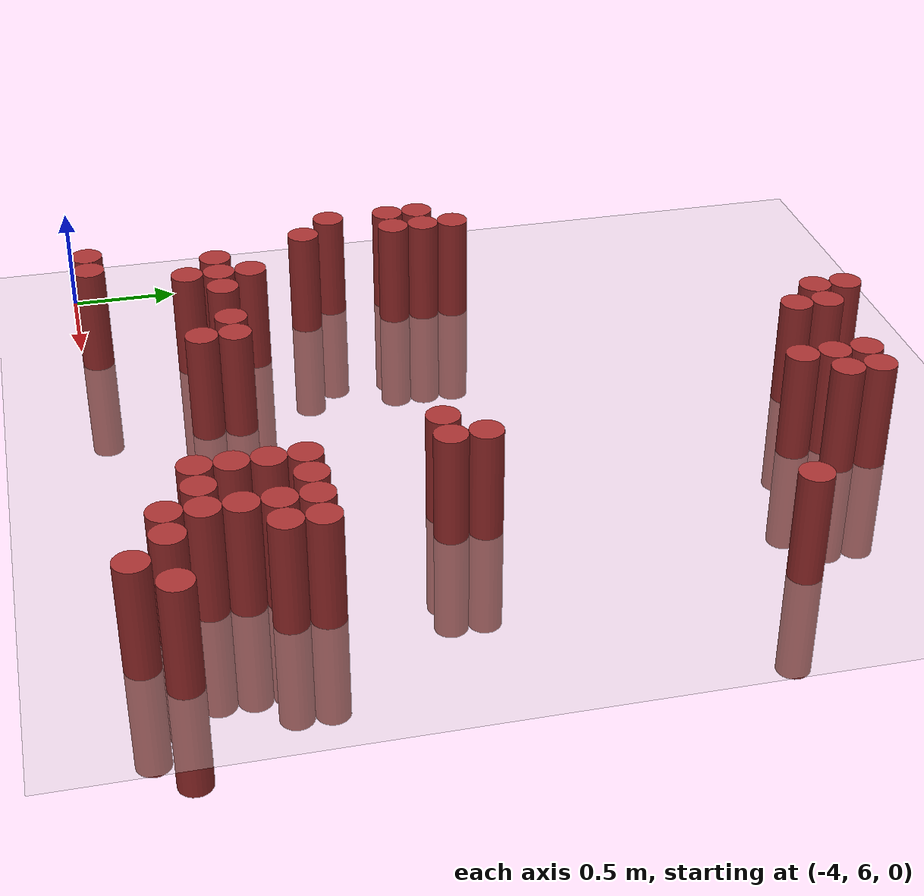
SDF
<sdf version="1.6">
 <world name="default">
  <model name="ground_plane">
   <static>1</static>
   <link name="link">
    <collision name="collision">
     <geometry><plane><normal>0 0 1</normal><size>100 100</size></plane></geometry>
     <surface><friction><ode><mu>100</mu><mu2>50</mu2></ode></friction></surface>
    </collision>
    <visual name="visual">
     <cast_shadows>0</cast_shadows>
     <geometry><plane><normal>0 0 1</normal><size>100 100</size></plane></geometry>
     <material>
      <script><uri>file://media/materials/scripts/gazebo.material</uri><name>Gazebo/Grey</name></script>
     </material>
    </visual>
   </link>
  </model>
  <model name="unit_cylinder_162">
   <static>1</static>
   <pose>-3.675000 7.275000 0.000000 0.000000 0.000000 0.000000</pose>
   <link name="link">
    <inertial>
     <mass>1</mass>
     <inertia><ixx>0.145833</ixx><ixy>0</ixy><ixz>0</ixz><iyy>0.145833</iyy><iyz>0</iyz><izz>0.125</izz></inertia>
    </inertial>
    <collision name="collision">
     <geometry><cylinder><radius>0.075000</radius><length>1</length></cylinder></geometry>
    </collision>
    <visual name="visual">
     <geometry><cylinder><radius>0.075000</radius><length>1</length></cylinder></geometry>
     <material>
      <ambient>0.648000 0.192000 0.192000 1</ambient>
      <diffuse>0.648000 0.192000 0.192000 1</diffuse>
     </material>
     <material>
      <script><name>Gazebo/Grey</name><uri>file://media/materials/scripts/gazebo.material</uri></script>
     </material>
    </visual>
   </link>
  </model>
  <model name="unit_cylinder_163">
   <static>1</static>
   <pose>-3.675000 7.575000 0.000000 0.000000 0.000000 0.000000</pose>
   <link name="link">
    <inertial>
     <mass>1</mass>
     <inertia><ixx>0.145833</ixx><ixy>0</ixy><ixz>0</ixz><iyy>0.145833</iyy><iyz>0</iyz><izz>0.125</izz></inertia>
    </inertial>
    <collision name="collision">
     <geometry><cylinder><radius>0.075000</radius><length>1</length></cylinder></geometry>
    </collision>
    <visual name="visual">
     <geometry><cylinder><radius>0.075000</radius><length>1</length></cylinder></geometry>
     <material>
      <ambient>0.648000 0.192000 0.192000 1</ambient>
      <diffuse>0.648000 0.192000 0.192000 1</diffuse>
     </material>
     <material>
      <script><name>Gazebo/Grey</name><uri>file://media/materials/scripts/gazebo.material</uri></script>
     </material>
    </visual>
   </link>
  </model>
  <model name="unit_cylinder_164">
   <static>1</static>
   <pose>-3.675000 7.725000 0.000000 0.000000 0.000000 0.000000</pose>
   <link name="link">
    <inertial>
     <mass>1</mass>
     <inertia><ixx>0.145833</ixx><ixy>0</ixy><ixz>0</ixz><iyy>0.145833</iyy><iyz>0</iyz><izz>0.125</izz></inertia>
    </inertial>
    <collision name="collision">
     <geometry><cylinder><radius>0.075000</radius><length>1</length></cylinder></geometry>
    </collision>
    <visual name="visual">
     <geometry><cylinder><radius>0.075000</radius><length>1</length></cylinder></geometry>
     <material>
      <ambient>0.648000 0.192000 0.192000 1</ambient>
      <diffuse>0.648000 0.192000 0.192000 1</diffuse>
     </material>
     <material>
      <script><name>Gazebo/Grey</name><uri>file://media/materials/scripts/gazebo.material</uri></script>
     </material>
    </visual>
   </link>
  </model>
  <model name="unit_cylinder_167">
   <static>1</static>
   <pose>-3.525000 6.075000 0.000000 0.000000 0.000000 0.000000</pose>
   <link name="link">
    <inertial>
     <mass>1</mass>
     <inertia><ixx>0.145833</ixx><ixy>0</ixy><ixz>0</ixz><iyy>0.145833</iyy><iyz>0</iyz><izz>0.125</izz></inertia>
    </inertial>
    <collision name="collision">
     <geometry><cylinder><radius>0.075000</radius><length>1</length></cylinder></geometry>
    </collision>
    <visual name="visual">
     <geometry><cylinder><radius>0.075000</radius><length>1</length></cylinder></geometry>
     <material>
      <ambient>0.648000 0.192000 0.192000 1</ambient>
      <diffuse>0.648000 0.192000 0.192000 1</diffuse>
     </material>
     <material>
      <script><name>Gazebo/Grey</name><uri>file://media/materials/scripts/gazebo.material</uri></script>
     </material>
    </visual>
   </link>
  </model>
  <model name="unit_cylinder_168">
   <static>1</static>
   <pose>-3.525000 7.125000 0.000000 0.000000 0.000000 0.000000</pose>
   <link name="link">
    <inertial>
     <mass>1</mass>
     <inertia><ixx>0.145833</ixx><ixy>0</ixy><ixz>0</ixz><iyy>0.145833</iyy><iyz>0</iyz><izz>0.125</izz></inertia>
    </inertial>
    <collision name="collision">
     <geometry><cylinder><radius>0.075000</radius><length>1</length></cylinder></geometry>
    </collision>
    <visual name="visual">
     <geometry><cylinder><radius>0.075000</radius><length>1</length></cylinder></geometry>
     <material>
      <ambient>0.648000 0.192000 0.192000 1</ambient>
      <diffuse>0.648000 0.192000 0.192000 1</diffuse>
     </material>
     <material>
      <script><name>Gazebo/Grey</name><uri>file://media/materials/scripts/gazebo.material</uri></script>
     </material>
    </visual>
   </link>
  </model>
  <model name="unit_cylinder_169">
   <static>1</static>
   <pose>-3.525000 7.575000 0.000000 0.000000 0.000000 0.000000</pose>
   <link name="link">
    <inertial>
     <mass>1</mass>
     <inertia><ixx>0.145833</ixx><ixy>0</ixy><ixz>0</ixz><iyy>0.145833</iyy><iyz>0</iyz><izz>0.125</izz></inertia>
    </inertial>
    <collision name="collision">
     <geometry><cylinder><radius>0.075000</radius><length>1</length></cylinder></geometry>
    </collision>
    <visual name="visual">
     <geometry><cylinder><radius>0.075000</radius><length>1</length></cylinder></geometry>
     <material>
      <ambient>0.648000 0.192000 0.192000 1</ambient>
      <diffuse>0.648000 0.192000 0.192000 1</diffuse>
     </material>
     <material>
      <script><name>Gazebo/Grey</name><uri>file://media/materials/scripts/gazebo.material</uri></script>
     </material>
    </visual>
   </link>
  </model>
  <model name="unit_cylinder_170">
   <static>1</static>
   <pose>-3.525000 7.725000 0.000000 0.000000 0.000000 0.000000</pose>
   <link name="link">
    <inertial>
     <mass>1</mass>
     <inertia><ixx>0.145833</ixx><ixy>0</ixy><ixz>0</ixz><iyy>0.145833</iyy><iyz>0</iyz><izz>0.125</izz></inertia>
    </inertial>
    <collision name="collision">
     <geometry><cylinder><radius>0.075000</radius><length>1</length></cylinder></geometry>
    </collision>
    <visual name="visual">
     <geometry><cylinder><radius>0.075000</radius><length>1</length></cylinder></geometry>
     <material>
      <ambient>0.648000 0.192000 0.192000 1</ambient>
      <diffuse>0.648000 0.192000 0.192000 1</diffuse>
     </material>
     <material>
      <script><name>Gazebo/Grey</name><uri>file://media/materials/scripts/gazebo.material</uri></script>
     </material>
    </visual>
   </link>
  </model>
  <model name="unit_cylinder_171">
   <static>1</static>
   <pose>-3.525000 7.875000 0.000000 0.000000 0.000000 0.000000</pose>
   <link name="link">
    <inertial>
     <mass>1</mass>
     <inertia><ixx>0.145833</ixx><ixy>0</ixy><ixz>0</ixz><iyy>0.145833</iyy><iyz>0</iyz><izz>0.125</izz></inertia>
    </inertial>
    <collision name="collision">
     <geometry><cylinder><radius>0.075000</radius><length>1</length></cylinder></geometry>
    </collision>
    <visual name="visual">
     <geometry><cylinder><radius>0.075000</radius><length>1</length></cylinder></geometry>
     <material>
      <ambient>0.648000 0.192000 0.192000 1</ambient>
      <diffuse>0.648000 0.192000 0.192000 1</diffuse>
     </material>
     <material>
      <script><name>Gazebo/Grey</name><uri>file://media/materials/scripts/gazebo.material</uri></script>
     </material>
    </visual>
   </link>
  </model>
  <model name="unit_cylinder_174">
   <static>1</static>
   <pose>-3.375000 6.075000 0.000000 0.000000 0.000000 0.000000</pose>
   <link name="link">
    <inertial>
     <mass>1</mass>
     <inertia><ixx>0.145833</ixx><ixy>0</ixy><ixz>0</ixz><iyy>0.145833</iyy><iyz>0</iyz><izz>0.125</izz></inertia>
    </inertial>
    <collision name="collision">
     <geometry><cylinder><radius>0.075000</radius><length>1</length></cylinder></geometry>
    </collision>
    <visual name="visual">
     <geometry><cylinder><radius>0.075000</radius><length>1</length></cylinder></geometry>
     <material>
      <ambient>0.648000 0.192000 0.192000 1</ambient>
      <diffuse>0.648000 0.192000 0.192000 1</diffuse>
     </material>
     <material>
      <script><name>Gazebo/Grey</name><uri>file://media/materials/scripts/gazebo.material</uri></script>
     </material>
    </visual>
   </link>
  </model>
  <model name="unit_cylinder_175">
   <static>1</static>
   <pose>-3.375000 6.675000 0.000000 0.000000 0.000000 0.000000</pose>
   <link name="link">
    <inertial>
     <mass>1</mass>
     <inertia><ixx>0.145833</ixx><ixy>0</ixy><ixz>0</ixz><iyy>0.145833</iyy><iyz>0</iyz><izz>0.125</izz></inertia>
    </inertial>
    <collision name="collision">
     <geometry><cylinder><radius>0.075000</radius><length>1</length></cylinder></geometry>
    </collision>
    <visual name="visual">
     <geometry><cylinder><radius>0.075000</radius><length>1</length></cylinder></geometry>
     <material>
      <ambient>0.648000 0.192000 0.192000 1</ambient>
      <diffuse>0.648000 0.192000 0.192000 1</diffuse>
     </material>
     <material>
      <script><name>Gazebo/Grey</name><uri>file://media/materials/scripts/gazebo.material</uri></script>
     </material>
    </visual>
   </link>
  </model>
  <model name="unit_cylinder_178">
   <static>1</static>
   <pose>-3.225000 6.525000 0.000000 0.000000 0.000000 0.000000</pose>
   <link name="link">
    <inertial>
     <mass>1</mass>
     <inertia><ixx>0.145833</ixx><ixy>0</ixy><ixz>0</ixz><iyy>0.145833</iyy><iyz>0</iyz><izz>0.125</izz></inertia>
    </inertial>
    <collision name="collision">
     <geometry><cylinder><radius>0.075000</radius><length>1</length></cylinder></geometry>
    </collision>
    <visual name="visual">
     <geometry><cylinder><radius>0.075000</radius><length>1</length></cylinder></geometry>
     <material>
      <ambient>0.648000 0.192000 0.192000 1</ambient>
      <diffuse>0.648000 0.192000 0.192000 1</diffuse>
     </material>
     <material>
      <script><name>Gazebo/Grey</name><uri>file://media/materials/scripts/gazebo.material</uri></script>
     </material>
    </visual>
   </link>
  </model>
  <model name="unit_cylinder_179">
   <static>1</static>
   <pose>-3.225000 6.675000 0.000000 0.000000 0.000000 0.000000</pose>
   <link name="link">
    <inertial>
     <mass>1</mass>
     <inertia><ixx>0.145833</ixx><ixy>0</ixy><ixz>0</ixz><iyy>0.145833</iyy><iyz>0</iyz><izz>0.125</izz></inertia>
    </inertial>
    <collision name="collision">
     <geometry><cylinder><radius>0.075000</radius><length>1</length></cylinder></geometry>
    </collision>
    <visual name="visual">
     <geometry><cylinder><radius>0.075000</radius><length>1</length></cylinder></geometry>
     <material>
      <ambient>0.648000 0.192000 0.192000 1</ambient>
      <diffuse>0.648000 0.192000 0.192000 1</diffuse>
     </material>
     <material>
      <script><name>Gazebo/Grey</name><uri>file://media/materials/scripts/gazebo.material</uri></script>
     </material>
    </visual>
   </link>
  </model>
  <model name="unit_cylinder_180">
   <static>1</static>
   <pose>-3.225000 6.825000 0.000000 0.000000 0.000000 0.000000</pose>
   <link name="link">
    <inertial>
     <mass>1</mass>
     <inertia><ixx>0.145833</ixx><ixy>0</ixy><ixz>0</ixz><iyy>0.145833</iyy><iyz>0</iyz><izz>0.125</izz></inertia>
    </inertial>
    <collision name="collision">
     <geometry><cylinder><radius>0.075000</radius><length>1</length></cylinder></geometry>
    </collision>
    <visual name="visual">
     <geometry><cylinder><radius>0.075000</radius><length>1</length></cylinder></geometry>
     <material>
      <ambient>0.648000 0.192000 0.192000 1</ambient>
      <diffuse>0.648000 0.192000 0.192000 1</diffuse>
     </material>
     <material>
      <script><name>Gazebo/Grey</name><uri>file://media/materials/scripts/gazebo.material</uri></script>
     </material>
    </visual>
   </link>
  </model>
  <model name="unit_cylinder_181">
   <static>1</static>
   <pose>-3.075000 6.675000 0.000000 0.000000 0.000000 0.000000</pose>
   <link name="link">
    <inertial>
     <mass>1</mass>
     <inertia><ixx>0.145833</ixx><ixy>0</ixy><ixz>0</ixz><iyy>0.145833</iyy><iyz>0</iyz><izz>0.125</izz></inertia>
    </inertial>
    <collision name="collision">
     <geometry><cylinder><radius>0.075000</radius><length>1</length></cylinder></geometry>
    </collision>
    <visual name="visual">
     <geometry><cylinder><radius>0.075000</radius><length>1</length></cylinder></geometry>
     <material>
      <ambient>0.648000 0.192000 0.192000 1</ambient>
      <diffuse>0.648000 0.192000 0.192000 1</diffuse>
     </material>
     <material>
      <script><name>Gazebo/Grey</name><uri>file://media/materials/scripts/gazebo.material</uri></script>
     </material>
    </visual>
   </link>
  </model>
  <model name="unit_cylinder_182">
   <static>1</static>
   <pose>-2.775000 6.675000 0.000000 0.000000 0.000000 0.000000</pose>
   <link name="link">
    <inertial>
     <mass>1</mass>
     <inertia><ixx>0.145833</ixx><ixy>0</ixy><ixz>0</ixz><iyy>0.145833</iyy><iyz>0</iyz><izz>0.125</izz></inertia>
    </inertial>
    <collision name="collision">
     <geometry><cylinder><radius>0.075000</radius><length>1</length></cylinder></geometry>
    </collision>
    <visual name="visual">
     <geometry><cylinder><radius>0.075000</radius><length>1</length></cylinder></geometry>
     <material>
      <ambient>0.648000 0.192000 0.192000 1</ambient>
      <diffuse>0.648000 0.192000 0.192000 1</diffuse>
     </material>
     <material>
      <script><name>Gazebo/Grey</name><uri>file://media/materials/scripts/gazebo.material</uri></script>
     </material>
    </visual>
   </link>
  </model>
  <model name="unit_cylinder_183">
   <static>1</static>
   <pose>-2.625000 6.525000 0.000000 0.000000 0.000000 0.000000</pose>
   <link name="link">
    <inertial>
     <mass>1</mass>
     <inertia><ixx>0.145833</ixx><ixy>0</ixy><ixz>0</ixz><iyy>0.145833</iyy><iyz>0</iyz><izz>0.125</izz></inertia>
    </inertial>
    <collision name="collision">
     <geometry><cylinder><radius>0.075000</radius><length>1</length></cylinder></geometry>
    </collision>
    <visual name="visual">
     <geometry><cylinder><radius>0.075000</radius><length>1</length></cylinder></geometry>
     <material>
      <ambient>0.648000 0.192000 0.192000 1</ambient>
      <diffuse>0.648000 0.192000 0.192000 1</diffuse>
     </material>
     <material>
      <script><name>Gazebo/Grey</name><uri>file://media/materials/scripts/gazebo.material</uri></script>
     </material>
    </visual>
   </link>
  </model>
  <model name="unit_cylinder_184">
   <static>1</static>
   <pose>-2.625000 6.675000 0.000000 0.000000 0.000000 0.000000</pose>
   <link name="link">
    <inertial>
     <mass>1</mass>
     <inertia><ixx>0.145833</ixx><ixy>0</ixy><ixz>0</ixz><iyy>0.145833</iyy><iyz>0</iyz><izz>0.125</izz></inertia>
    </inertial>
    <collision name="collision">
     <geometry><cylinder><radius>0.075000</radius><length>1</length></cylinder></geometry>
    </collision>
    <visual name="visual">
     <geometry><cylinder><radius>0.075000</radius><length>1</length></cylinder></geometry>
     <material>
      <ambient>0.648000 0.192000 0.192000 1</ambient>
      <diffuse>0.648000 0.192000 0.192000 1</diffuse>
     </material>
     <material>
      <script><name>Gazebo/Grey</name><uri>file://media/materials/scripts/gazebo.material</uri></script>
     </material>
    </visual>
   </link>
  </model>
  <model name="unit_cylinder_185">
   <static>1</static>
   <pose>-2.475000 9.375000 0.000000 0.000000 0.000000 0.000000</pose>
   <link name="link">
    <inertial>
     <mass>1</mass>
     <inertia><ixx>0.145833</ixx><ixy>0</ixy><ixz>0</ixz><iyy>0.145833</iyy><iyz>0</iyz><izz>0.125</izz></inertia>
    </inertial>
    <collision name="collision">
     <geometry><cylinder><radius>0.075000</radius><length>1</length></cylinder></geometry>
    </collision>
    <visual name="visual">
     <geometry><cylinder><radius>0.075000</radius><length>1</length></cylinder></geometry>
     <material>
      <ambient>0.648000 0.192000 0.192000 1</ambient>
      <diffuse>0.648000 0.192000 0.192000 1</diffuse>
     </material>
     <material>
      <script><name>Gazebo/Grey</name><uri>file://media/materials/scripts/gazebo.material</uri></script>
     </material>
    </visual>
   </link>
  </model>
  <model name="unit_cylinder_186">
   <static>1</static>
   <pose>-2.475000 9.525000 0.000000 0.000000 0.000000 0.000000</pose>
   <link name="link">
    <inertial>
     <mass>1</mass>
     <inertia><ixx>0.145833</ixx><ixy>0</ixy><ixz>0</ixz><iyy>0.145833</iyy><iyz>0</iyz><izz>0.125</izz></inertia>
    </inertial>
    <collision name="collision">
     <geometry><cylinder><radius>0.075000</radius><length>1</length></cylinder></geometry>
    </collision>
    <visual name="visual">
     <geometry><cylinder><radius>0.075000</radius><length>1</length></cylinder></geometry>
     <material>
      <ambient>0.648000 0.192000 0.192000 1</ambient>
      <diffuse>0.648000 0.192000 0.192000 1</diffuse>
     </material>
     <material>
      <script><name>Gazebo/Grey</name><uri>file://media/materials/scripts/gazebo.material</uri></script>
     </material>
    </visual>
   </link>
  </model>
  <model name="unit_cylinder_187">
   <static>1</static>
   <pose>-2.325000 9.225000 0.000000 0.000000 0.000000 0.000000</pose>
   <link name="link">
    <inertial>
     <mass>1</mass>
     <inertia><ixx>0.145833</ixx><ixy>0</ixy><ixz>0</ixz><iyy>0.145833</iyy><iyz>0</iyz><izz>0.125</izz></inertia>
    </inertial>
    <collision name="collision">
     <geometry><cylinder><radius>0.075000</radius><length>1</length></cylinder></geometry>
    </collision>
    <visual name="visual">
     <geometry><cylinder><radius>0.075000</radius><length>1</length></cylinder></geometry>
     <material>
      <ambient>0.648000 0.192000 0.192000 1</ambient>
      <diffuse>0.648000 0.192000 0.192000 1</diffuse>
     </material>
     <material>
      <script><name>Gazebo/Grey</name><uri>file://media/materials/scripts/gazebo.material</uri></script>
     </material>
    </visual>
   </link>
  </model>
  <model name="unit_cylinder_188">
   <static>1</static>
   <pose>-2.325000 9.375000 0.000000 0.000000 0.000000 0.000000</pose>
   <link name="link">
    <inertial>
     <mass>1</mass>
     <inertia><ixx>0.145833</ixx><ixy>0</ixy><ixz>0</ixz><iyy>0.145833</iyy><iyz>0</iyz><izz>0.125</izz></inertia>
    </inertial>
    <collision name="collision">
     <geometry><cylinder><radius>0.075000</radius><length>1</length></cylinder></geometry>
    </collision>
    <visual name="visual">
     <geometry><cylinder><radius>0.075000</radius><length>1</length></cylinder></geometry>
     <material>
      <ambient>0.648000 0.192000 0.192000 1</ambient>
      <diffuse>0.648000 0.192000 0.192000 1</diffuse>
     </material>
     <material>
      <script><name>Gazebo/Grey</name><uri>file://media/materials/scripts/gazebo.material</uri></script>
     </material>
    </visual>
   </link>
  </model>
  <model name="unit_cylinder_190">
   <static>1</static>
   <pose>-1.875000 9.075000 0.000000 0.000000 0.000000 0.000000</pose>
   <link name="link">
    <inertial>
     <mass>1</mass>
     <inertia><ixx>0.145833</ixx><ixy>0</ixy><ixz>0</ixz><iyy>0.145833</iyy><iyz>0</iyz><izz>0.125</izz></inertia>
    </inertial>
    <collision name="collision">
     <geometry><cylinder><radius>0.075000</radius><length>1</length></cylinder></geometry>
    </collision>
    <visual name="visual">
     <geometry><cylinder><radius>0.075000</radius><length>1</length></cylinder></geometry>
     <material>
      <ambient>0.648000 0.192000 0.192000 1</ambient>
      <diffuse>0.648000 0.192000 0.192000 1</diffuse>
     </material>
     <material>
      <script><name>Gazebo/Grey</name><uri>file://media/materials/scripts/gazebo.material</uri></script>
     </material>
    </visual>
   </link>
  </model>
  <model name="unit_cylinder_191">
   <static>1</static>
   <pose>-1.875000 9.225000 0.000000 0.000000 0.000000 0.000000</pose>
   <link name="link">
    <inertial>
     <mass>1</mass>
     <inertia><ixx>0.145833</ixx><ixy>0</ixy><ixz>0</ixz><iyy>0.145833</iyy><iyz>0</iyz><izz>0.125</izz></inertia>
    </inertial>
    <collision name="collision">
     <geometry><cylinder><radius>0.075000</radius><length>1</length></cylinder></geometry>
    </collision>
    <visual name="visual">
     <geometry><cylinder><radius>0.075000</radius><length>1</length></cylinder></geometry>
     <material>
      <ambient>0.648000 0.192000 0.192000 1</ambient>
      <diffuse>0.648000 0.192000 0.192000 1</diffuse>
     </material>
     <material>
      <script><name>Gazebo/Grey</name><uri>file://media/materials/scripts/gazebo.material</uri></script>
     </material>
    </visual>
   </link>
  </model>
  <model name="unit_cylinder_192">
   <static>1</static>
   <pose>-1.875000 9.375000 0.000000 0.000000 0.000000 0.000000</pose>
   <link name="link">
    <inertial>
     <mass>1</mass>
     <inertia><ixx>0.145833</ixx><ixy>0</ixy><ixz>0</ixz><iyy>0.145833</iyy><iyz>0</iyz><izz>0.125</izz></inertia>
    </inertial>
    <collision name="collision">
     <geometry><cylinder><radius>0.075000</radius><length>1</length></cylinder></geometry>
    </collision>
    <visual name="visual">
     <geometry><cylinder><radius>0.075000</radius><length>1</length></cylinder></geometry>
     <material>
      <ambient>0.648000 0.192000 0.192000 1</ambient>
      <diffuse>0.648000 0.192000 0.192000 1</diffuse>
     </material>
     <material>
      <script><name>Gazebo/Grey</name><uri>file://media/materials/scripts/gazebo.material</uri></script>
     </material>
    </visual>
   </link>
  </model>
  <model name="unit_cylinder_196">
   <static>1</static>
   <pose>-1.725000 7.425000 0.000000 0.000000 0.000000 0.000000</pose>
   <link name="link">
    <inertial>
     <mass>1</mass>
     <inertia><ixx>0.145833</ixx><ixy>0</ixy><ixz>0</ixz><iyy>0.145833</iyy><iyz>0</iyz><izz>0.125</izz></inertia>
    </inertial>
    <collision name="collision">
     <geometry><cylinder><radius>0.075000</radius><length>1</length></cylinder></geometry>
    </collision>
    <visual name="visual">
     <geometry><cylinder><radius>0.075000</radius><length>1</length></cylinder></geometry>
     <material>
      <ambient>0.648000 0.192000 0.192000 1</ambient>
      <diffuse>0.648000 0.192000 0.192000 1</diffuse>
     </material>
     <material>
      <script><name>Gazebo/Grey</name><uri>file://media/materials/scripts/gazebo.material</uri></script>
     </material>
    </visual>
   </link>
  </model>
  <model name="unit_cylinder_197">
   <static>1</static>
   <pose>-1.725000 9.225000 0.000000 0.000000 0.000000 0.000000</pose>
   <link name="link">
    <inertial>
     <mass>1</mass>
     <inertia><ixx>0.145833</ixx><ixy>0</ixy><ixz>0</ixz><iyy>0.145833</iyy><iyz>0</iyz><izz>0.125</izz></inertia>
    </inertial>
    <collision name="collision">
     <geometry><cylinder><radius>0.075000</radius><length>1</length></cylinder></geometry>
    </collision>
    <visual name="visual">
     <geometry><cylinder><radius>0.075000</radius><length>1</length></cylinder></geometry>
     <material>
      <ambient>0.648000 0.192000 0.192000 1</ambient>
      <diffuse>0.648000 0.192000 0.192000 1</diffuse>
     </material>
     <material>
      <script><name>Gazebo/Grey</name><uri>file://media/materials/scripts/gazebo.material</uri></script>
     </material>
    </visual>
   </link>
  </model>
  <model name="unit_cylinder_198">
   <static>1</static>
   <pose>-1.725000 9.375000 0.000000 0.000000 0.000000 0.000000</pose>
   <link name="link">
    <inertial>
     <mass>1</mass>
     <inertia><ixx>0.145833</ixx><ixy>0</ixy><ixz>0</ixz><iyy>0.145833</iyy><iyz>0</iyz><izz>0.125</izz></inertia>
    </inertial>
    <collision name="collision">
     <geometry><cylinder><radius>0.075000</radius><length>1</length></cylinder></geometry>
    </collision>
    <visual name="visual">
     <geometry><cylinder><radius>0.075000</radius><length>1</length></cylinder></geometry>
     <material>
      <ambient>0.648000 0.192000 0.192000 1</ambient>
      <diffuse>0.648000 0.192000 0.192000 1</diffuse>
     </material>
     <material>
      <script><name>Gazebo/Grey</name><uri>file://media/materials/scripts/gazebo.material</uri></script>
     </material>
    </visual>
   </link>
  </model>
  <model name="unit_cylinder_202">
   <static>1</static>
   <pose>-1.575000 6.375000 0.000000 0.000000 0.000000 0.000000</pose>
   <link name="link">
    <inertial>
     <mass>1</mass>
     <inertia><ixx>0.145833</ixx><ixy>0</ixy><ixz>0</ixz><iyy>0.145833</iyy><iyz>0</iyz><izz>0.125</izz></inertia>
    </inertial>
    <collision name="collision">
     <geometry><cylinder><radius>0.075000</radius><length>1</length></cylinder></geometry>
    </collision>
    <visual name="visual">
     <geometry><cylinder><radius>0.075000</radius><length>1</length></cylinder></geometry>
     <material>
      <ambient>0.648000 0.192000 0.192000 1</ambient>
      <diffuse>0.648000 0.192000 0.192000 1</diffuse>
     </material>
     <material>
      <script><name>Gazebo/Grey</name><uri>file://media/materials/scripts/gazebo.material</uri></script>
     </material>
    </visual>
   </link>
  </model>
  <model name="unit_cylinder_203">
   <static>1</static>
   <pose>-1.575000 6.525000 0.000000 0.000000 0.000000 0.000000</pose>
   <link name="link">
    <inertial>
     <mass>1</mass>
     <inertia><ixx>0.145833</ixx><ixy>0</ixy><ixz>0</ixz><iyy>0.145833</iyy><iyz>0</iyz><izz>0.125</izz></inertia>
    </inertial>
    <collision name="collision">
     <geometry><cylinder><radius>0.075000</radius><length>1</length></cylinder></geometry>
    </collision>
    <visual name="visual">
     <geometry><cylinder><radius>0.075000</radius><length>1</length></cylinder></geometry>
     <material>
      <ambient>0.648000 0.192000 0.192000 1</ambient>
      <diffuse>0.648000 0.192000 0.192000 1</diffuse>
     </material>
     <material>
      <script><name>Gazebo/Grey</name><uri>file://media/materials/scripts/gazebo.material</uri></script>
     </material>
    </visual>
   </link>
  </model>
  <model name="unit_cylinder_204">
   <static>1</static>
   <pose>-1.575000 6.675000 0.000000 0.000000 0.000000 0.000000</pose>
   <link name="link">
    <inertial>
     <mass>1</mass>
     <inertia><ixx>0.145833</ixx><ixy>0</ixy><ixz>0</ixz><iyy>0.145833</iyy><iyz>0</iyz><izz>0.125</izz></inertia>
    </inertial>
    <collision name="collision">
     <geometry><cylinder><radius>0.075000</radius><length>1</length></cylinder></geometry>
    </collision>
    <visual name="visual">
     <geometry><cylinder><radius>0.075000</radius><length>1</length></cylinder></geometry>
     <material>
      <ambient>0.648000 0.192000 0.192000 1</ambient>
      <diffuse>0.648000 0.192000 0.192000 1</diffuse>
     </material>
     <material>
      <script><name>Gazebo/Grey</name><uri>file://media/materials/scripts/gazebo.material</uri></script>
     </material>
    </visual>
   </link>
  </model>
  <model name="unit_cylinder_205">
   <static>1</static>
   <pose>-1.575000 6.825000 0.000000 0.000000 0.000000 0.000000</pose>
   <link name="link">
    <inertial>
     <mass>1</mass>
     <inertia><ixx>0.145833</ixx><ixy>0</ixy><ixz>0</ixz><iyy>0.145833</iyy><iyz>0</iyz><izz>0.125</izz></inertia>
    </inertial>
    <collision name="collision">
     <geometry><cylinder><radius>0.075000</radius><length>1</length></cylinder></geometry>
    </collision>
    <visual name="visual">
     <geometry><cylinder><radius>0.075000</radius><length>1</length></cylinder></geometry>
     <material>
      <ambient>0.648000 0.192000 0.192000 1</ambient>
      <diffuse>0.648000 0.192000 0.192000 1</diffuse>
     </material>
     <material>
      <script><name>Gazebo/Grey</name><uri>file://media/materials/scripts/gazebo.material</uri></script>
     </material>
    </visual>
   </link>
  </model>
  <model name="unit_cylinder_206">
   <static>1</static>
   <pose>-1.575000 7.425000 0.000000 0.000000 0.000000 0.000000</pose>
   <link name="link">
    <inertial>
     <mass>1</mass>
     <inertia><ixx>0.145833</ixx><ixy>0</ixy><ixz>0</ixz><iyy>0.145833</iyy><iyz>0</iyz><izz>0.125</izz></inertia>
    </inertial>
    <collision name="collision">
     <geometry><cylinder><radius>0.075000</radius><length>1</length></cylinder></geometry>
    </collision>
    <visual name="visual">
     <geometry><cylinder><radius>0.075000</radius><length>1</length></cylinder></geometry>
     <material>
      <ambient>0.648000 0.192000 0.192000 1</ambient>
      <diffuse>0.648000 0.192000 0.192000 1</diffuse>
     </material>
     <material>
      <script><name>Gazebo/Grey</name><uri>file://media/materials/scripts/gazebo.material</uri></script>
     </material>
    </visual>
   </link>
  </model>
  <model name="unit_cylinder_207">
   <static>1</static>
   <pose>-1.575000 7.575000 0.000000 0.000000 0.000000 0.000000</pose>
   <link name="link">
    <inertial>
     <mass>1</mass>
     <inertia><ixx>0.145833</ixx><ixy>0</ixy><ixz>0</ixz><iyy>0.145833</iyy><iyz>0</iyz><izz>0.125</izz></inertia>
    </inertial>
    <collision name="collision">
     <geometry><cylinder><radius>0.075000</radius><length>1</length></cylinder></geometry>
    </collision>
    <visual name="visual">
     <geometry><cylinder><radius>0.075000</radius><length>1</length></cylinder></geometry>
     <material>
      <ambient>0.648000 0.192000 0.192000 1</ambient>
      <diffuse>0.648000 0.192000 0.192000 1</diffuse>
     </material>
     <material>
      <script><name>Gazebo/Grey</name><uri>file://media/materials/scripts/gazebo.material</uri></script>
     </material>
    </visual>
   </link>
  </model>
  <model name="unit_cylinder_209">
   <static>1</static>
   <pose>-1.425000 6.375000 0.000000 0.000000 0.000000 0.000000</pose>
   <link name="link">
    <inertial>
     <mass>1</mass>
     <inertia><ixx>0.145833</ixx><ixy>0</ixy><ixz>0</ixz><iyy>0.145833</iyy><iyz>0</iyz><izz>0.125</izz></inertia>
    </inertial>
    <collision name="collision">
     <geometry><cylinder><radius>0.075000</radius><length>1</length></cylinder></geometry>
    </collision>
    <visual name="visual">
     <geometry><cylinder><radius>0.075000</radius><length>1</length></cylinder></geometry>
     <material>
      <ambient>0.648000 0.192000 0.192000 1</ambient>
      <diffuse>0.648000 0.192000 0.192000 1</diffuse>
     </material>
     <material>
      <script><name>Gazebo/Grey</name><uri>file://media/materials/scripts/gazebo.material</uri></script>
     </material>
    </visual>
   </link>
  </model>
  <model name="unit_cylinder_210">
   <static>1</static>
   <pose>-1.425000 6.825000 0.000000 0.000000 0.000000 0.000000</pose>
   <link name="link">
    <inertial>
     <mass>1</mass>
     <inertia><ixx>0.145833</ixx><ixy>0</ixy><ixz>0</ixz><iyy>0.145833</iyy><iyz>0</iyz><izz>0.125</izz></inertia>
    </inertial>
    <collision name="collision">
     <geometry><cylinder><radius>0.075000</radius><length>1</length></cylinder></geometry>
    </collision>
    <visual name="visual">
     <geometry><cylinder><radius>0.075000</radius><length>1</length></cylinder></geometry>
     <material>
      <ambient>0.648000 0.192000 0.192000 1</ambient>
      <diffuse>0.648000 0.192000 0.192000 1</diffuse>
     </material>
     <material>
      <script><name>Gazebo/Grey</name><uri>file://media/materials/scripts/gazebo.material</uri></script>
     </material>
    </visual>
   </link>
  </model>
  <model name="unit_cylinder_212">
   <static>1</static>
   <pose>-1.275000 6.225000 0.000000 0.000000 0.000000 0.000000</pose>
   <link name="link">
    <inertial>
     <mass>1</mass>
     <inertia><ixx>0.145833</ixx><ixy>0</ixy><ixz>0</ixz><iyy>0.145833</iyy><iyz>0</iyz><izz>0.125</izz></inertia>
    </inertial>
    <collision name="collision">
     <geometry><cylinder><radius>0.075000</radius><length>1</length></cylinder></geometry>
    </collision>
    <visual name="visual">
     <geometry><cylinder><radius>0.075000</radius><length>1</length></cylinder></geometry>
     <material>
      <ambient>0.648000 0.192000 0.192000 1</ambient>
      <diffuse>0.648000 0.192000 0.192000 1</diffuse>
     </material>
     <material>
      <script><name>Gazebo/Grey</name><uri>file://media/materials/scripts/gazebo.material</uri></script>
     </material>
    </visual>
   </link>
  </model>
  <model name="unit_cylinder_213">
   <static>1</static>
   <pose>-1.275000 6.375000 0.000000 0.000000 0.000000 0.000000</pose>
   <link name="link">
    <inertial>
     <mass>1</mass>
     <inertia><ixx>0.145833</ixx><ixy>0</ixy><ixz>0</ixz><iyy>0.145833</iyy><iyz>0</iyz><izz>0.125</izz></inertia>
    </inertial>
    <collision name="collision">
     <geometry><cylinder><radius>0.075000</radius><length>1</length></cylinder></geometry>
    </collision>
    <visual name="visual">
     <geometry><cylinder><radius>0.075000</radius><length>1</length></cylinder></geometry>
     <material>
      <ambient>0.648000 0.192000 0.192000 1</ambient>
      <diffuse>0.648000 0.192000 0.192000 1</diffuse>
     </material>
     <material>
      <script><name>Gazebo/Grey</name><uri>file://media/materials/scripts/gazebo.material</uri></script>
     </material>
    </visual>
   </link>
  </model>
  <model name="unit_cylinder_214">
   <static>1</static>
   <pose>-1.275000 6.525000 0.000000 0.000000 0.000000 0.000000</pose>
   <link name="link">
    <inertial>
     <mass>1</mass>
     <inertia><ixx>0.145833</ixx><ixy>0</ixy><ixz>0</ixz><iyy>0.145833</iyy><iyz>0</iyz><izz>0.125</izz></inertia>
    </inertial>
    <collision name="collision">
     <geometry><cylinder><radius>0.075000</radius><length>1</length></cylinder></geometry>
    </collision>
    <visual name="visual">
     <geometry><cylinder><radius>0.075000</radius><length>1</length></cylinder></geometry>
     <material>
      <ambient>0.648000 0.192000 0.192000 1</ambient>
      <diffuse>0.648000 0.192000 0.192000 1</diffuse>
     </material>
     <material>
      <script><name>Gazebo/Grey</name><uri>file://media/materials/scripts/gazebo.material</uri></script>
     </material>
    </visual>
   </link>
  </model>
  <model name="unit_cylinder_215">
   <static>1</static>
   <pose>-1.275000 6.675000 0.000000 0.000000 0.000000 0.000000</pose>
   <link name="link">
    <inertial>
     <mass>1</mass>
     <inertia><ixx>0.145833</ixx><ixy>0</ixy><ixz>0</ixz><iyy>0.145833</iyy><iyz>0</iyz><izz>0.125</izz></inertia>
    </inertial>
    <collision name="collision">
     <geometry><cylinder><radius>0.075000</radius><length>1</length></cylinder></geometry>
    </collision>
    <visual name="visual">
     <geometry><cylinder><radius>0.075000</radius><length>1</length></cylinder></geometry>
     <material>
      <ambient>0.648000 0.192000 0.192000 1</ambient>
      <diffuse>0.648000 0.192000 0.192000 1</diffuse>
     </material>
     <material>
      <script><name>Gazebo/Grey</name><uri>file://media/materials/scripts/gazebo.material</uri></script>
     </material>
    </visual>
   </link>
  </model>
  <model name="unit_cylinder_216">
   <static>1</static>
   <pose>-1.275000 6.825000 0.000000 0.000000 0.000000 0.000000</pose>
   <link name="link">
    <inertial>
     <mass>1</mass>
     <inertia><ixx>0.145833</ixx><ixy>0</ixy><ixz>0</ixz><iyy>0.145833</iyy><iyz>0</iyz><izz>0.125</izz></inertia>
    </inertial>
    <collision name="collision">
     <geometry><cylinder><radius>0.075000</radius><length>1</length></cylinder></geometry>
    </collision>
    <visual name="visual">
     <geometry><cylinder><radius>0.075000</radius><length>1</length></cylinder></geometry>
     <material>
      <ambient>0.648000 0.192000 0.192000 1</ambient>
      <diffuse>0.648000 0.192000 0.192000 1</diffuse>
     </material>
     <material>
      <script><name>Gazebo/Grey</name><uri>file://media/materials/scripts/gazebo.material</uri></script>
     </material>
    </visual>
   </link>
  </model>
  <model name="unit_cylinder_218">
   <static>1</static>
   <pose>-1.125000 6.225000 0.000000 0.000000 0.000000 0.000000</pose>
   <link name="link">
    <inertial>
     <mass>1</mass>
     <inertia><ixx>0.145833</ixx><ixy>0</ixy><ixz>0</ixz><iyy>0.145833</iyy><iyz>0</iyz><izz>0.125</izz></inertia>
    </inertial>
    <collision name="collision">
     <geometry><cylinder><radius>0.075000</radius><length>1</length></cylinder></geometry>
    </collision>
    <visual name="visual">
     <geometry><cylinder><radius>0.075000</radius><length>1</length></cylinder></geometry>
     <material>
      <ambient>0.648000 0.192000 0.192000 1</ambient>
      <diffuse>0.648000 0.192000 0.192000 1</diffuse>
     </material>
     <material>
      <script><name>Gazebo/Grey</name><uri>file://media/materials/scripts/gazebo.material</uri></script>
     </material>
    </visual>
   </link>
  </model>
  <model name="unit_cylinder_219">
   <static>1</static>
   <pose>-1.125000 6.675000 0.000000 0.000000 0.000000 0.000000</pose>
   <link name="link">
    <inertial>
     <mass>1</mass>
     <inertia><ixx>0.145833</ixx><ixy>0</ixy><ixz>0</ixz><iyy>0.145833</iyy><iyz>0</iyz><izz>0.125</izz></inertia>
    </inertial>
    <collision name="collision">
     <geometry><cylinder><radius>0.075000</radius><length>1</length></cylinder></geometry>
    </collision>
    <visual name="visual">
     <geometry><cylinder><radius>0.075000</radius><length>1</length></cylinder></geometry>
     <material>
      <ambient>0.648000 0.192000 0.192000 1</ambient>
      <diffuse>0.648000 0.192000 0.192000 1</diffuse>
     </material>
     <material>
      <script><name>Gazebo/Grey</name><uri>file://media/materials/scripts/gazebo.material</uri></script>
     </material>
    </visual>
   </link>
  </model>
  <model name="unit_cylinder_220">
   <static>1</static>
   <pose>-1.125000 6.825000 0.000000 0.000000 0.000000 0.000000</pose>
   <link name="link">
    <inertial>
     <mass>1</mass>
     <inertia><ixx>0.145833</ixx><ixy>0</ixy><ixz>0</ixz><iyy>0.145833</iyy><iyz>0</iyz><izz>0.125</izz></inertia>
    </inertial>
    <collision name="collision">
     <geometry><cylinder><radius>0.075000</radius><length>1</length></cylinder></geometry>
    </collision>
    <visual name="visual">
     <geometry><cylinder><radius>0.075000</radius><length>1</length></cylinder></geometry>
     <material>
      <ambient>0.648000 0.192000 0.192000 1</ambient>
      <diffuse>0.648000 0.192000 0.192000 1</diffuse>
     </material>
     <material>
      <script><name>Gazebo/Grey</name><uri>file://media/materials/scripts/gazebo.material</uri></script>
     </material>
    </visual>
   </link>
  </model>
  <model name="unit_cylinder_223">
   <static>1</static>
   <pose>-0.975000 6.075000 0.000000 0.000000 0.000000 0.000000</pose>
   <link name="link">
    <inertial>
     <mass>1</mass>
     <inertia><ixx>0.145833</ixx><ixy>0</ixy><ixz>0</ixz><iyy>0.145833</iyy><iyz>0</iyz><izz>0.125</izz></inertia>
    </inertial>
    <collision name="collision">
     <geometry><cylinder><radius>0.075000</radius><length>1</length></cylinder></geometry>
    </collision>
    <visual name="visual">
     <geometry><cylinder><radius>0.075000</radius><length>1</length></cylinder></geometry>
     <material>
      <ambient>0.648000 0.192000 0.192000 1</ambient>
      <diffuse>0.648000 0.192000 0.192000 1</diffuse>
     </material>
     <material>
      <script><name>Gazebo/Grey</name><uri>file://media/materials/scripts/gazebo.material</uri></script>
     </material>
    </visual>
   </link>
  </model>
  <model name="unit_cylinder_224">
   <static>1</static>
   <pose>-0.975000 8.775000 0.000000 0.000000 0.000000 0.000000</pose>
   <link name="link">
    <inertial>
     <mass>1</mass>
     <inertia><ixx>0.145833</ixx><ixy>0</ixy><ixz>0</ixz><iyy>0.145833</iyy><iyz>0</iyz><izz>0.125</izz></inertia>
    </inertial>
    <collision name="collision">
     <geometry><cylinder><radius>0.075000</radius><length>1</length></cylinder></geometry>
    </collision>
    <visual name="visual">
     <geometry><cylinder><radius>0.075000</radius><length>1</length></cylinder></geometry>
     <material>
      <ambient>0.648000 0.192000 0.192000 1</ambient>
      <diffuse>0.648000 0.192000 0.192000 1</diffuse>
     </material>
     <material>
      <script><name>Gazebo/Grey</name><uri>file://media/materials/scripts/gazebo.material</uri></script>
     </material>
    </visual>
   </link>
  </model>
  <model name="unit_cylinder_225">
   <static>1</static>
   <pose>-0.825000 6.225000 0.000000 0.000000 0.000000 0.000000</pose>
   <link name="link">
    <inertial>
     <mass>1</mass>
     <inertia><ixx>0.145833</ixx><ixy>0</ixy><ixz>0</ixz><iyy>0.145833</iyy><iyz>0</iyz><izz>0.125</izz></inertia>
    </inertial>
    <collision name="collision">
     <geometry><cylinder><radius>0.075000</radius><length>1</length></cylinder></geometry>
    </collision>
    <visual name="visual">
     <geometry><cylinder><radius>0.075000</radius><length>1</length></cylinder></geometry>
     <material>
      <ambient>0.648000 0.192000 0.192000 1</ambient>
      <diffuse>0.648000 0.192000 0.192000 1</diffuse>
     </material>
     <material>
      <script><name>Gazebo/Grey</name><uri>file://media/materials/scripts/gazebo.material</uri></script>
     </material>
    </visual>
   </link>
  </model>
 </world>
</sdf>
